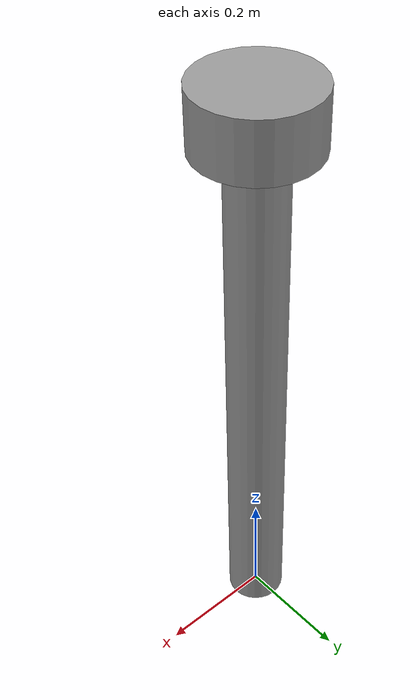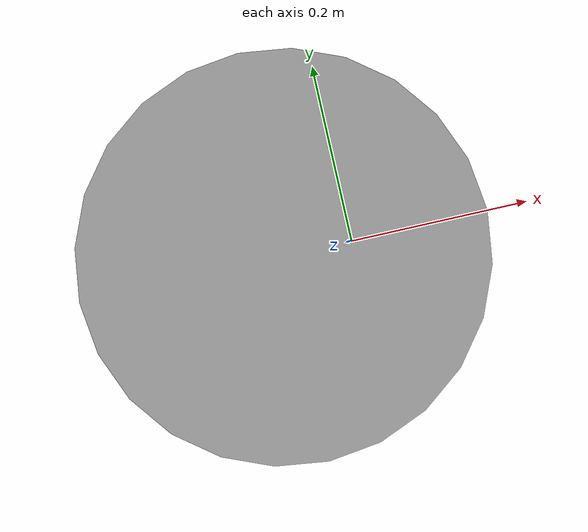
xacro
<?xml version="1.0"?>
<robot xmlns:xacro="http://ros.org/wiki/xacro" name="robot_model">

	<!-- Import Rviz colors -->
	<xacro:include filename="$(find lidar_pcd_simulator)/urdf/materials.xacro" />

	<link name="world"/>
	<link name="base_link" />

	<link name="lidar_support_link">
		<inertial>
			<mass value="1" />
			<inertia ixx="1" ixy="0" ixz="0" iyy="1" iyz="0" izz="1" />
		</inertial>
		<collision>
			<geometry>
				<cylinder radius="0.05" length="1" />
			</geometry>
		</collision>
		<visual>
			<geometry>
				<cylinder radius="0.05" length="1" />
			</geometry>
			<material name="grey" />
		</visual>
	</link>

	<link name="lidar_link">
		<inertial>
			<origin xyz="0 0 0" rpy="0 0 0"/>
			<mass value="0.1" />
			<inertia ixx="0.1" ixy="0" ixz="0" iyy="0.1" iyz="0" izz="0.1" />
		</inertial>
		<collision>
			<origin xyz="0 0 0" rpy="0 0 0"/>
			<geometry>
				<cylinder radius="0.1" length="0.1" />
			</geometry>
		</collision>
		<visual>
			<origin xyz="0 0 0" rpy="0 0 0"/>
			<geometry>
				<cylinder radius="0.1" length="0.1" />
			</geometry>
			<material name="grey" />
		</visual>
		<sensor name="lidar" type="gpu_lidar">
			<topic>lidar</topic>
			<update_rate>10</update_rate>
			<lidar>
				<scan>
					<horizontal>
						<samples>640</samples>
						<resolution>1</resolution>
						<min_angle>-1.14159</min_angle>
						<max_angle>1.14159</max_angle>
					</horizontal>
					<vertical>
						<samples>50</samples>
						<resolution>1</resolution>
						<min_angle>-0.7854</min_angle>
						<max_angle>0.7854</max_angle>
					</vertical>
				</scan>
				<range>
					<min>0.08</min>
					<max>30.0</max>
					<resolution>0.02</resolution>
				</range>
			</lidar>
			<always_on>1</always_on>
			<visualize>true</visualize>
		</sensor>
	</link>

	<joint name="base_2_world" type="fixed">
		<parent link="world"/>
		<child link="base_link"/>
	  </joint>

	<joint name="lidar_2_base" type="fixed">
		<parent link='base_link' />
		<child link='lidar_support_link' />
		<origin xyz="0 0 0.5" rpy="0 0 0" />
	</joint>

	<joint name="lidar_2_lidar" type="fixed">
		<parent link='lidar_support_link' />
		<child link='lidar_link' />
		<origin xyz="0 0 0.5" rpy="0 0 0" />
	</joint>

	<gazebo reference="lidar_link">
		<material>Gazebo/Blue</material>
	</gazebo>

	<gazebo>
		<plugin filename="ignition-gazebo-physics-system" name="ignition::gazebo::systems::Physics" />
		<plugin filename="ignition-gazebo-sensors-system" name="ignition::gazebo::systems::Sensors">
			<render_engine>ogre2</render_engine>
		</plugin>
		<plugin filename="ignition-gazebo-user-commands-system" name="ignition::gazebo::systems::UserCommands" />
		<plugin filename="ignition-gazebo-scene-broadcaster-system"	name="ignition::gazebo::systems::SceneBroadcaster" />
		<plugin filename="ignition-gazebo-joint-state-publisher-system" name="ignition::gazebo::systems::JointStatePublisher"/>
	</gazebo>
</robot>
